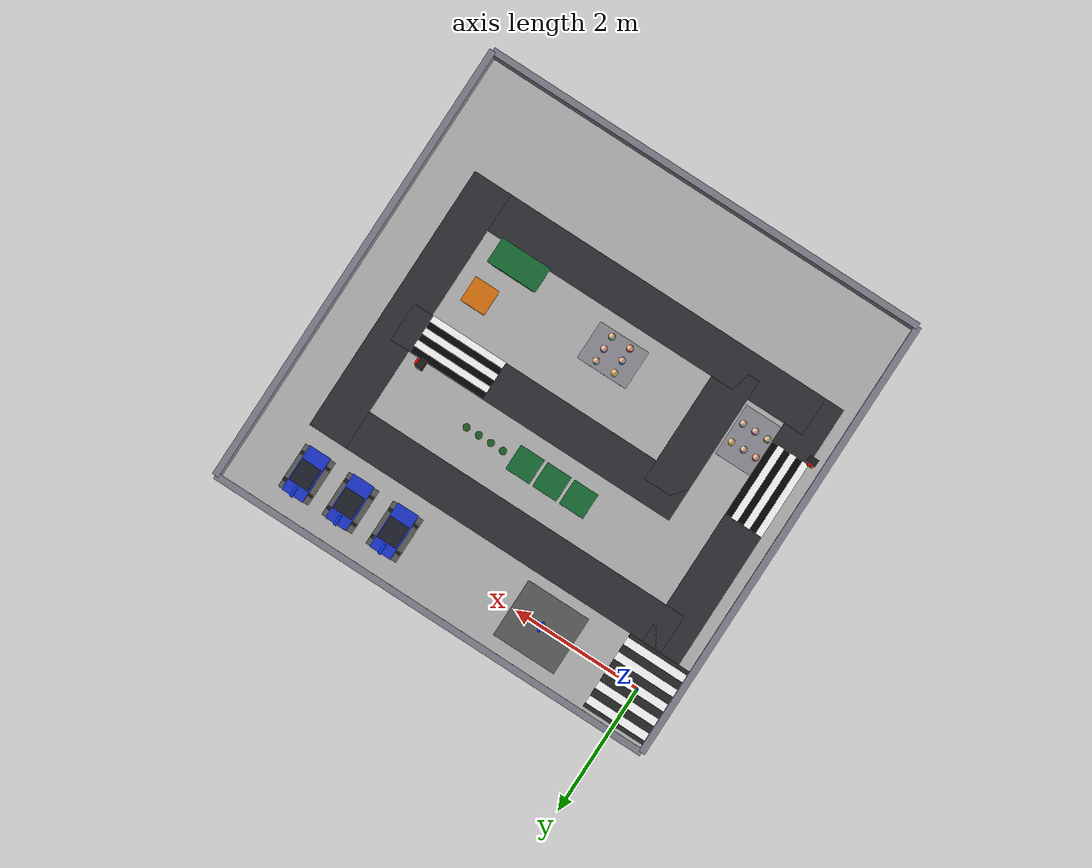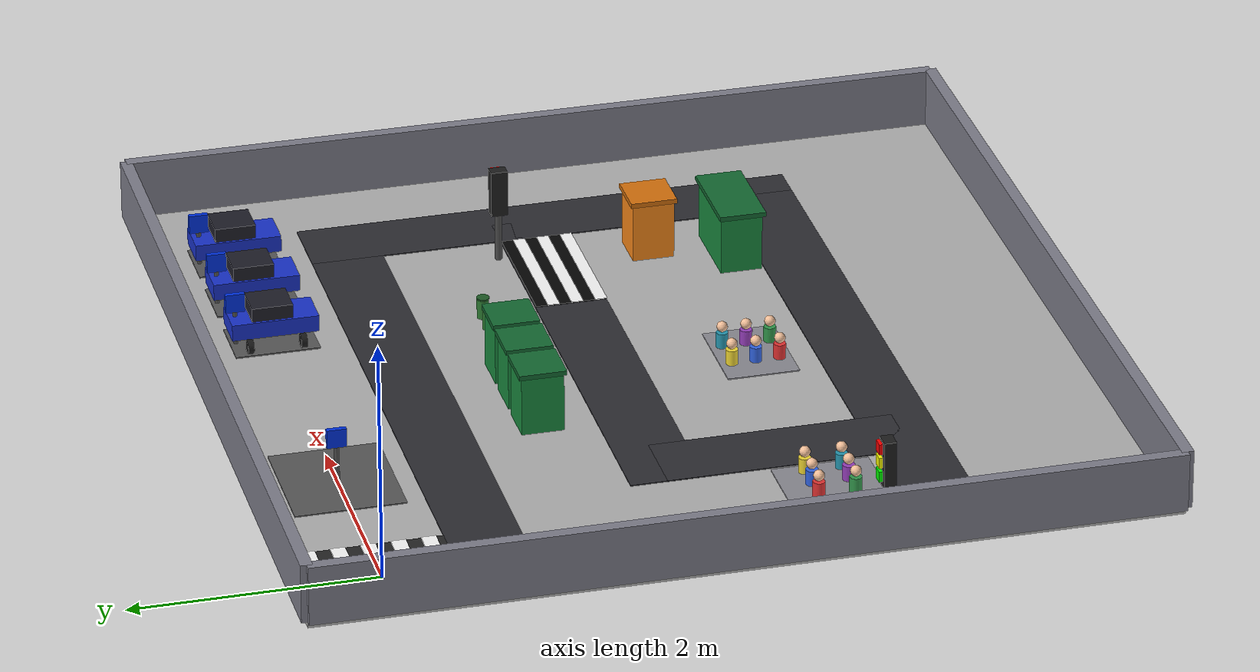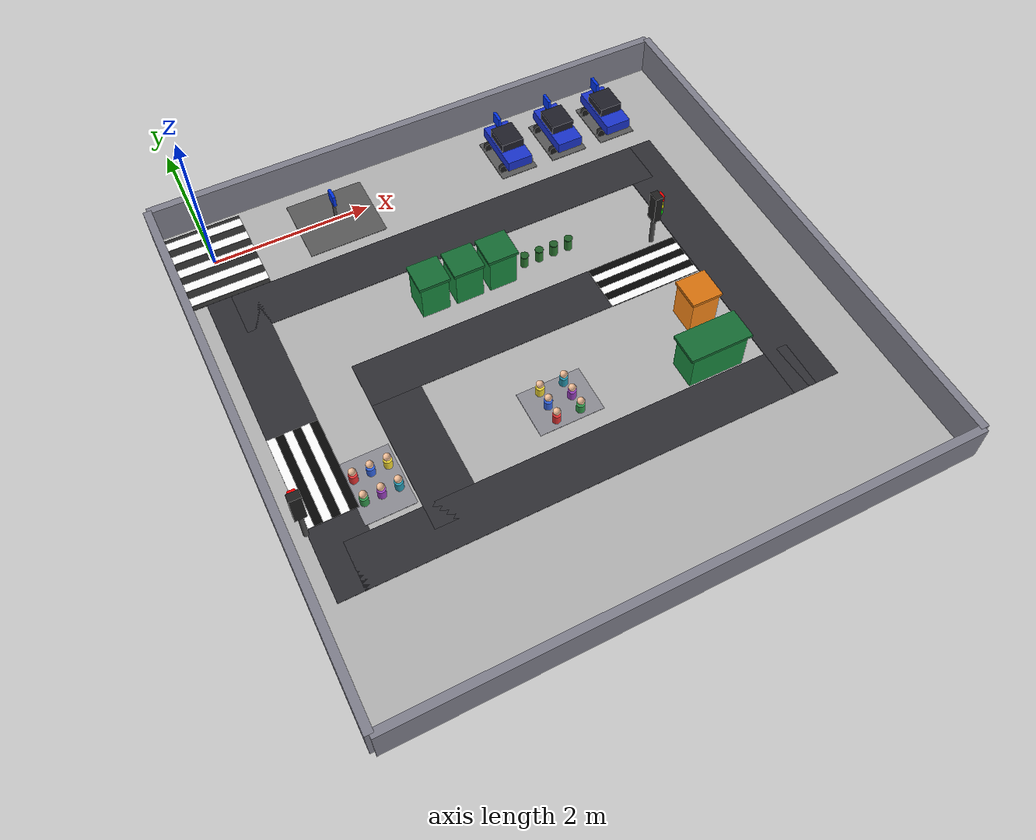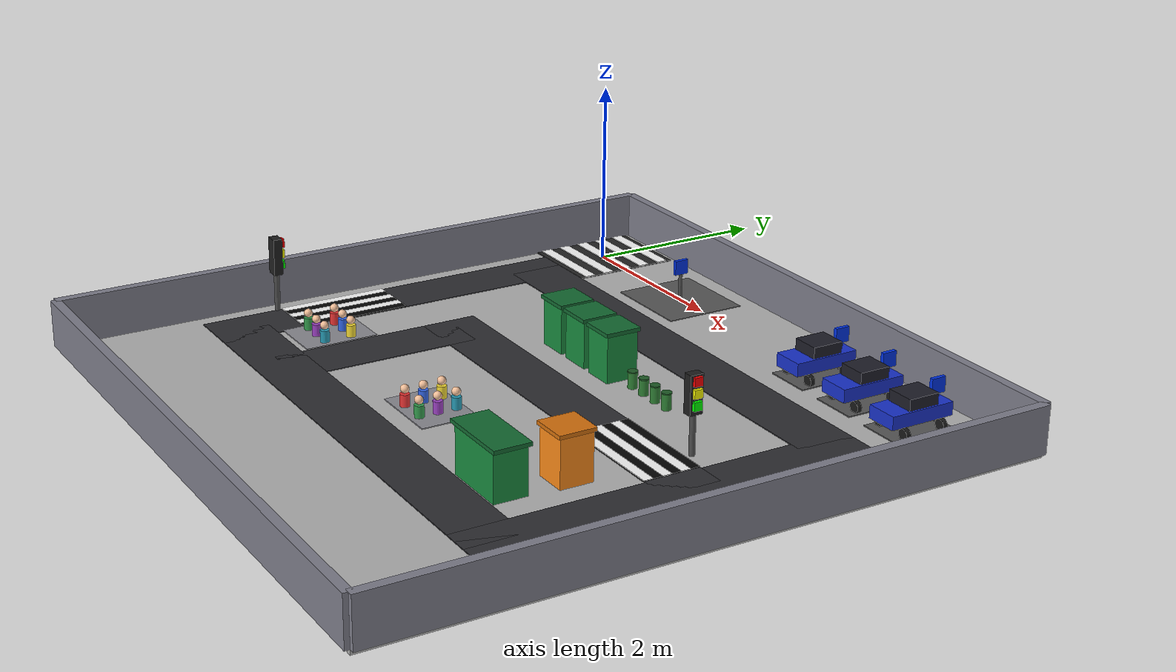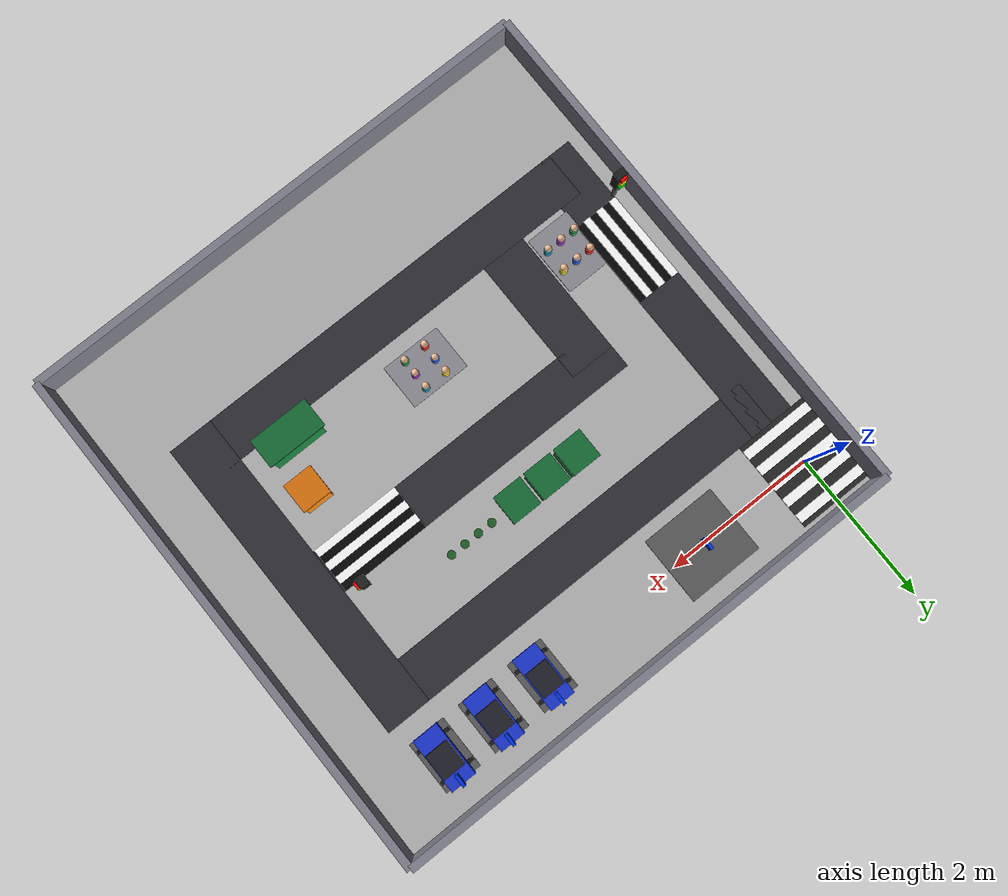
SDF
<sdf version="1.7">
 <world name="robot_nav_field">
  <physics type="ode">
   <max_step_size>0.001</max_step_size>
   <real_time_factor>1</real_time_factor>
   <real_time_update_rate>1000</real_time_update_rate>
  </physics>
  <scene><ambient>0.45 0.45 0.45 1</ambient><background>0.7 0.7 0.7 1</background><shadows>1</shadows></scene>
  <light name="sun" type="directional">
   <pose>0 0 10 0 -0 0</pose>
   <diffuse>0.8 0.8 0.8 1</diffuse>
   <specular>0.1 0.1 0.1 1</specular>
   <direction>0.3 0.3 -1</direction>
   <attenuation><range>10</range></attenuation>
   <spot><inner_angle>0</inner_angle><outer_angle>0</outer_angle><falloff>0</falloff></spot>
  </light>
  <model name="ground_plane">
   <static>1</static>
   <pose>2.975 -2.8 -0.025 0 -0 0</pose>
   <link name="ground_link">
    <visual name="ground_visual">
     <geometry><box><size>7 7 0.05</size></box></geometry>
     <material><ambient>0.7 0.7 0.7 1</ambient><diffuse>0.7 0.7 0.7 1</diffuse></material>
    </visual>
    <collision name="ground_collision"><geometry><box><size>7 7 0.05</size></box></geometry></collision>
   </link>
  </model>
  <model name="boundary_walls">
   <static>1</static>
   <link name="north_wall">
    <pose>-0.525 -2.8 0.25 0 -0 0</pose>
    <visual name="north_visual">
     <geometry><box><size>0.1 7 0.5</size></box></geometry>
     <material><ambient>0.5 0.5 0.55 1</ambient><diffuse>0.5 0.5 0.55 1</diffuse></material>
    </visual>
    <collision name="north_collision"><geometry><box><size>0.1 7 0.5</size></box></geometry></collision>
   </link>
   <link name="south_wall">
    <pose>6.475 -2.8 0.25 0 -0 0</pose>
    <visual name="south_visual">
     <geometry><box><size>0.1 7 0.5</size></box></geometry>
     <material><ambient>0.5 0.5 0.55 1</ambient><diffuse>0.5 0.5 0.55 1</diffuse></material>
    </visual>
    <collision name="south_collision"><geometry><box><size>0.1 7 0.5</size></box></geometry></collision>
   </link>
   <link name="west_wall">
    <pose>2.975 -6.3 0.25 0 -0 0</pose>
    <visual name="west_visual">
     <geometry><box><size>7 0.1 0.5</size></box></geometry>
     <material><ambient>0.5 0.5 0.55 1</ambient><diffuse>0.5 0.5 0.55 1</diffuse></material>
    </visual>
    <collision name="west_collision"><geometry><box><size>7 0.1 0.5</size></box></geometry></collision>
   </link>
   <link name="east_wall">
    <pose>2.975 0.7 0.25 0 -0 0</pose>
    <visual name="east_visual">
     <geometry><box><size>7 0.1 0.5</size></box></geometry>
     <material><ambient>0.5 0.5 0.55 1</ambient><diffuse>0.5 0.5 0.55 1</diffuse></material>
    </visual>
    <collision name="east_collision"><geometry><box><size>7 0.1 0.5</size></box></geometry></collision>
   </link>
  </model>
  <model name="roads">
   <static>1</static>
   <link name="road_top">
    <pose>0 -2.7 0.005 0 -0 0</pose>
    <visual name="road_top_visual">
     <geometry><box><size>0.6 4.2 0.01</size></box></geometry>
     <material><ambient>0.18 0.18 0.2 1</ambient><diffuse>0.18 0.18 0.2 1</diffuse></material>
    </visual>
    <collision name="road_top_collision"><geometry><box><size>0.6 3.6 0.01</size></box></geometry></collision>
   </link>
   <link name="road_right">
    <pose>2.75 -0.9 0.005 0 -0 0</pose>
    <visual name="road_right_visual">
     <geometry><box><size>5.5 0.6 0.01</size></box></geometry>
     <material><ambient>0.18 0.18 0.2 1</ambient><diffuse>0.18 0.18 0.2 1</diffuse></material>
    </visual>
    <collision name="road_right_collision"><geometry><box><size>5.5 0.6 0.01</size></box></geometry></collision>
   </link>
   <link name="road_bottom_left">
    <pose>5.5 -2.7 0.005 0 -0 0</pose>
    <visual name="road_bl_visual">
     <geometry><box><size>0.6 4.2 0.01</size></box></geometry>
     <material><ambient>0.18 0.18 0.2 1</ambient><diffuse>0.18 0.18 0.2 1</diffuse></material>
    </visual>
    <collision name="road_bl_collision"><geometry><box><size>0.6 3.6 0.01</size></box></geometry></collision>
   </link>
   <link name="road_left">
    <pose>2.75 -4.5 0.005 0 -0 0</pose>
    <visual name="road_left_visual">
     <geometry><box><size>5.5 0.6 0.01</size></box></geometry>
     <material><ambient>0.18 0.18 0.2 1</ambient><diffuse>0.18 0.18 0.2 1</diffuse></material>
    </visual>
    <collision name="road_left_collision"><geometry><box><size>5.5 0.6 0.01</size></box></geometry></collision>
   </link>
   <link name="road_vertical">
    <pose>3.2 -2.5 0.005 0 -0 0</pose>
    <visual name="road_vertical_visual">
     <geometry><box><size>4.6 0.6 0.01</size></box></geometry>
     <material><ambient>0.18 0.18 0.2 1</ambient><diffuse>0.18 0.18 0.2 1</diffuse></material>
    </visual>
    <collision name="road_vertical_collision">
     <geometry><box><size>3.4 0.6 0.01</size></box></geometry>
    </collision>
   </link>
   <link name="road_horizontal">
    <pose>1.2 -3.5 0.005 0 -0 0</pose>
    <visual name="road_horizontal_visual">
     <geometry><box><size>0.6 2 0.01</size></box></geometry>
     <material><ambient>0.18 0.18 0.2 1</ambient><diffuse>0.18 0.18 0.2 1</diffuse></material>
    </visual>
    <collision name="road_horizontal_collision">
     <geometry><box><size>0.6 2 0.01</size></box></geometry>
    </collision>
   </link>
  </model>
  <model name="start_finish">
   <static>1</static>
   <link name="zebra_link">
    <visual name="zebra_base">
     <pose>0 0 0.006 0 -0 0</pose>
     <geometry><box><size>1 1.2 0.012</size></box></geometry>
     <material><ambient>0.15 0.15 0.15 1</ambient><diffuse>0.15 0.15 0.15 1</diffuse></material>
    </visual>
    <collision name="zebra_base_col">
     <pose>0 0 0.006 0 -0 0</pose>
     <geometry><box><size>1 1.2 0.012</size></box></geometry>
    </collision>
    <visual name="stripe_1">
     <pose>0 -0.48 0.013 0 -0 0</pose>
     <geometry><box><size>1 0.12 0.014</size></box></geometry>
     <material><ambient>1 1 1 1</ambient><diffuse>1 1 1 1</diffuse></material>
    </visual>
    <visual name="stripe_2">
     <pose>0 -0.24 0.013 0 -0 0</pose>
     <geometry><box><size>1 0.12 0.014</size></box></geometry>
     <material><ambient>1 1 1 1</ambient><diffuse>1 1 1 1</diffuse></material>
    </visual>
    <visual name="stripe_3">
     <pose>0 0 0.013 0 -0 0</pose>
     <geometry><box><size>1 0.12 0.014</size></box></geometry>
     <material><ambient>1 1 1 1</ambient><diffuse>1 1 1 1</diffuse></material>
    </visual>
    <visual name="stripe_4">
     <pose>0 0.24 0.013 0 -0 0</pose>
     <geometry><box><size>1 0.12 0.014</size></box></geometry>
     <material><ambient>1 1 1 1</ambient><diffuse>1 1 1 1</diffuse></material>
    </visual>
    <visual name="stripe_5">
     <pose>0 0.48 0.013 0 -0 0</pose>
     <geometry><box><size>1 0.12 0.014</size></box></geometry>
     <material><ambient>1 1 1 1</ambient><diffuse>1 1 1 1</diffuse></material>
    </visual>
   </link>
  </model>
  <model name="zebra_top">
   <static>1</static>
   <pose>0 -3.3 0 0 -0 0</pose>
   <link name="zebra_top_link">
    <visual name="base">
     <pose>0 0 0.006 0 -0 0</pose>
     <geometry><box><size>0.6 1.2 0.012</size></box></geometry>
     <material><ambient>0.2 0.2 0.2 1</ambient><diffuse>0.2 0.2 0.2 1</diffuse></material>
    </visual>
    <collision name="base_col">
     <pose>0 0 0.006 0 -0 0</pose>
     <geometry><box><size>0.6 1.2 0.012</size></box></geometry>
    </collision>
    <visual name="w1">
     <pose>-0.25 0 0.013 0 -0 0</pose>
     <geometry><box><size>0.1 1.2 0.014</size></box></geometry>
     <material><ambient>1 1 1 1</ambient><diffuse>1 1 1 1</diffuse></material>
    </visual>
    <visual name="k1">
     <pose>-0.15 0 0.013 0 -0 0</pose>
     <geometry><box><size>0.1 1.2 0.014</size></box></geometry>
     <material><ambient>0.02 0.02 0.02 1</ambient><diffuse>0.02 0.02 0.02 1</diffuse></material>
    </visual>
    <visual name="w2">
     <pose>-0.05 0 0.013 0 -0 0</pose>
     <geometry><box><size>0.1 1.2 0.014</size></box></geometry>
     <material><ambient>1 1 1 1</ambient><diffuse>1 1 1 1</diffuse></material>
    </visual>
    <visual name="k2">
     <pose>0.05 0 0.013 0 -0 0</pose>
     <geometry><box><size>0.1 1.2 0.014</size></box></geometry>
     <material><ambient>0.02 0.02 0.02 1</ambient><diffuse>0.02 0.02 0.02 1</diffuse></material>
    </visual>
    <visual name="w3">
     <pose>0.15 0 0.013 0 -0 0</pose>
     <geometry><box><size>0.1 1.2 0.014</size></box></geometry>
     <material><ambient>1 1 1 1</ambient><diffuse>1 1 1 1</diffuse></material>
    </visual>
    <visual name="k3">
     <pose>0.25 0 0.013 0 -0 0</pose>
     <geometry><box><size>0.1 1.2 0.014</size></box></geometry>
     <material><ambient>0.02 0.02 0.02 1</ambient><diffuse>0.02 0.02 0.02 1</diffuse></material>
    </visual>
   </link>
  </model>
  <model name="traffic_light_top">
   <pose>-3.59885 -3.37809 0 -0.000183 0.00942 1.5514</pose>
   <static>1</static>
   <link name="tl_top_link">
    <visual name="pole_visual">
     <pose>-0.5 -3.3 0.3 0 -0 0</pose>
     <geometry><cylinder><radius>0.03</radius><length>0.6</length></cylinder></geometry>
     <material><ambient>0.3 0.3 0.3 1</ambient><diffuse>0.3 0.3 0.3 1</diffuse></material>
    </visual>
    <collision name="pole_col">
     <pose>-0.5 -3.3 0.3 0 -0 0</pose>
     <geometry><cylinder><radius>0.03</radius><length>0.6</length></cylinder></geometry>
    </collision>
    <visual name="housing_visual">
     <pose>-0.5 -3.3 0.62 0 -0 0</pose>
     <geometry><box><size>0.1 0.14 0.4</size></box></geometry>
     <material><ambient>0.12 0.12 0.12 1</ambient><diffuse>0.12 0.12 0.12 1</diffuse></material>
    </visual>
    <collision name="housing_col">
     <pose>-0.5 -3.3 0.62 0 -0 0</pose>
     <geometry><box><size>0.1 0.14 0.4</size></box></geometry>
    </collision>
    <visual name="red_visual">
     <pose>-0.43 -3.3 0.76 0 -0 0</pose>
     <geometry><box><size>0.03 0.09 0.09</size></box></geometry>
     <material><ambient>1 0 0 1</ambient><diffuse>1 0 0 1</diffuse></material>
    </visual>
    <visual name="yellow_visual">
     <pose>-0.43 -3.3 0.64 0 -0 0</pose>
     <geometry><box><size>0.03 0.09 0.09</size></box></geometry>
     <material><ambient>1 1 0 1</ambient><diffuse>1 1 0 1</diffuse></material>
    </visual>
    <visual name="green_visual">
     <pose>-0.43 -3.3 0.52 0 -0 0</pose>
     <geometry><box><size>0.03 0.09 0.09</size></box></geometry>
     <material><ambient>0 1 0 1</ambient><diffuse>0 1 0 1</diffuse></material>
    </visual>
   </link>
  </model>
  <model name="block_a">
   <static>1</static>
   <pose>0.571732 -3.73098 0 0 0 -1.5682</pose>
   <link name="block_a_link">
    <visual name="sidewalk">
     <pose>0 0 0.005 0 -0 0</pose>
     <geometry><box><size>0.8 0.6 0.01</size></box></geometry>
     <material><ambient>0.55 0.55 0.58 1</ambient><diffuse>0.55 0.55 0.58 1</diffuse></material>
    </visual>
    <collision name="sidewalk_col">
     <pose>0 0 0.005 0 -0 0</pose>
     <geometry><box><size>0.8 0.6 0.01</size></box></geometry>
    </collision>
    <visual name="p1_body">
     <pose>-0.15 -0.2 0.07 0 -0 0</pose>
     <geometry><cylinder><radius>0.05</radius><length>0.14</length></cylinder></geometry>
     <material><ambient>0.9 0.2 0.2 1</ambient><diffuse>0.9 0.2 0.2 1</diffuse></material>
    </visual>
    <visual name="p1_head">
     <pose>-0.15 -0.2 0.19 0 -0 0</pose>
     <geometry><sphere><radius>0.045</radius></sphere></geometry>
     <material><ambient>0.95 0.75 0.6 1</ambient><diffuse>0.95 0.75 0.6 1</diffuse></material>
    </visual>
    <visual name="p2_body">
     <pose>-0.15 0 0.07 0 -0 0</pose>
     <geometry><cylinder><radius>0.05</radius><length>0.14</length></cylinder></geometry>
     <material><ambient>0.2 0.4 0.9 1</ambient><diffuse>0.2 0.4 0.9 1</diffuse></material>
    </visual>
    <visual name="p2_head">
     <pose>-0.15 0 0.19 0 -0 0</pose>
     <geometry><sphere><radius>0.045</radius></sphere></geometry>
     <material><ambient>0.95 0.75 0.6 1</ambient><diffuse>0.95 0.75 0.6 1</diffuse></material>
    </visual>
    <visual name="p3_body">
     <pose>-0.15 0.2 0.07 0 -0 0</pose>
     <geometry><cylinder><radius>0.05</radius><length>0.14</length></cylinder></geometry>
     <material><ambient>0.95 0.85 0.2 1</ambient><diffuse>0.95 0.85 0.2 1</diffuse></material>
    </visual>
    <visual name="p3_head">
     <pose>-0.15 0.2 0.19 0 -0 0</pose>
     <geometry><sphere><radius>0.045</radius></sphere></geometry>
     <material><ambient>0.95 0.75 0.6 1</ambient><diffuse>0.95 0.75 0.6 1</diffuse></material>
    </visual>
    <visual name="p4_body">
     <pose>0.15 -0.2 0.07 0 -0 0</pose>
     <geometry><cylinder><radius>0.05</radius><length>0.14</length></cylinder></geometry>
     <material><ambient>0.2 0.6 0.3 1</ambient><diffuse>0.2 0.6 0.3 1</diffuse></material>
    </visual>
    <visual name="p4_head">
     <pose>0.15 -0.2 0.19 0 -0 0</pose>
     <geometry><sphere><radius>0.045</radius></sphere></geometry>
     <material><ambient>0.95 0.75 0.6 1</ambient><diffuse>0.95 0.75 0.6 1</diffuse></material>
    </visual>
    <visual name="p5_body">
     <pose>0.15 0 0.07 0 -0 0</pose>
     <geometry><cylinder><radius>0.05</radius><length>0.14</length></cylinder></geometry>
     <material><ambient>0.6 0.25 0.75 1</ambient><diffuse>0.6 0.25 0.75 1</diffuse></material>
    </visual>
    <visual name="p5_head">
     <pose>0.15 0 0.19 0 -0 0</pose>
     <geometry><sphere><radius>0.045</radius></sphere></geometry>
     <material><ambient>0.95 0.75 0.6 1</ambient><diffuse>0.95 0.75 0.6 1</diffuse></material>
    </visual>
    <visual name="p6_body">
     <pose>0.15 0.2 0.07 0 -0 0</pose>
     <geometry><cylinder><radius>0.05</radius><length>0.14</length></cylinder></geometry>
     <material><ambient>0.15 0.6 0.7 1</ambient><diffuse>0.15 0.6 0.7 1</diffuse></material>
    </visual>
    <visual name="p6_head">
     <pose>0.15 0.2 0.19 0 -0 0</pose>
     <geometry><sphere><radius>0.045</radius></sphere></geometry>
     <material><ambient>0.95 0.75 0.6 1</ambient><diffuse>0.95 0.75 0.6 1</diffuse></material>
    </visual>
   </link>
  </model>
  <model name="block_b">
   <static>1</static>
   <pose>2.8 -3.7 0 0 -0 0</pose>
   <link name="block_b_link">
    <visual name="sidewalk">
     <pose>0 0 0.005 0 -0 0</pose>
     <geometry><box><size>0.8 0.6 0.01</size></box></geometry>
     <material><ambient>0.55 0.55 0.58 1</ambient><diffuse>0.55 0.55 0.58 1</diffuse></material>
    </visual>
    <collision name="sidewalk_col">
     <pose>0 0 0.005 0 -0 0</pose>
     <geometry><box><size>0.8 0.6 0.01</size></box></geometry>
    </collision>
    <visual name="p1_body">
     <pose>-0.15 -0.2 0.07 0 -0 0</pose>
     <geometry><cylinder><radius>0.05</radius><length>0.14</length></cylinder></geometry>
     <material><ambient>0.9 0.2 0.2 1</ambient><diffuse>0.9 0.2 0.2 1</diffuse></material>
    </visual>
    <visual name="p1_head">
     <pose>-0.15 -0.2 0.19 0 -0 0</pose>
     <geometry><sphere><radius>0.045</radius></sphere></geometry>
     <material><ambient>0.95 0.75 0.6 1</ambient><diffuse>0.95 0.75 0.6 1</diffuse></material>
    </visual>
    <visual name="p2_body">
     <pose>-0.15 0 0.07 0 -0 0</pose>
     <geometry><cylinder><radius>0.05</radius><length>0.14</length></cylinder></geometry>
     <material><ambient>0.2 0.4 0.9 1</ambient><diffuse>0.2 0.4 0.9 1</diffuse></material>
    </visual>
    <visual name="p2_head">
     <pose>-0.15 0 0.19 0 -0 0</pose>
     <geometry><sphere><radius>0.045</radius></sphere></geometry>
     <material><ambient>0.95 0.75 0.6 1</ambient><diffuse>0.95 0.75 0.6 1</diffuse></material>
    </visual>
    <visual name="p3_body">
     <pose>-0.15 0.2 0.07 0 -0 0</pose>
     <geometry><cylinder><radius>0.05</radius><length>0.14</length></cylinder></geometry>
     <material><ambient>0.95 0.85 0.2 1</ambient><diffuse>0.95 0.85 0.2 1</diffuse></material>
    </visual>
    <visual name="p3_head">
     <pose>-0.15 0.2 0.19 0 -0 0</pose>
     <geometry><sphere><radius>0.045</radius></sphere></geometry>
     <material><ambient>0.95 0.75 0.6 1</ambient><diffuse>0.95 0.75 0.6 1</diffuse></material>
    </visual>
    <visual name="p4_body">
     <pose>0.15 -0.2 0.07 0 -0 0</pose>
     <geometry><cylinder><radius>0.05</radius><length>0.14</length></cylinder></geometry>
     <material><ambient>0.2 0.6 0.3 1</ambient><diffuse>0.2 0.6 0.3 1</diffuse></material>
    </visual>
    <visual name="p4_head">
     <pose>0.15 -0.2 0.19 0 -0 0</pose>
     <geometry><sphere><radius>0.045</radius></sphere></geometry>
     <material><ambient>0.95 0.75 0.6 1</ambient><diffuse>0.95 0.75 0.6 1</diffuse></material>
    </visual>
    <visual name="p5_body">
     <pose>0.15 0 0.07 0 -0 0</pose>
     <geometry><cylinder><radius>0.05</radius><length>0.14</length></cylinder></geometry>
     <material><ambient>0.6 0.25 0.75 1</ambient><diffuse>0.6 0.25 0.75 1</diffuse></material>
    </visual>
    <visual name="p5_head">
     <pose>0.15 0 0.19 0 -0 0</pose>
     <geometry><sphere><radius>0.045</radius></sphere></geometry>
     <material><ambient>0.95 0.75 0.6 1</ambient><diffuse>0.95 0.75 0.6 1</diffuse></material>
    </visual>
    <visual name="p6_body">
     <pose>0.15 0.2 0.07 0 -0 0</pose>
     <geometry><cylinder><radius>0.05</radius><length>0.14</length></cylinder></geometry>
     <material><ambient>0.15 0.6 0.7 1</ambient><diffuse>0.15 0.6 0.7 1</diffuse></material>
    </visual>
    <visual name="p6_head">
     <pose>0.15 0.2 0.19 0 -0 0</pose>
     <geometry><sphere><radius>0.045</radius></sphere></geometry>
     <material><ambient>0.95 0.75 0.6 1</ambient><diffuse>0.95 0.75 0.6 1</diffuse></material>
    </visual>
   </link>
  </model>
  <model name="building_a">
   <static>1</static>
   <pose>2.1 -1.75 0 0 -0 0</pose>
   <link name="building_a_link">
    <visual name="body">
     <pose>0 0 0.25 0 -0 0</pose>
     <geometry><box><size>0.35 0.35 0.5</size></box></geometry>
     <material><ambient>0.1 0.55 0.25 1</ambient><diffuse>0.1 0.55 0.25 1</diffuse></material>
    </visual>
    <collision name="body_col">
     <pose>0 0 0.25 0 -0 0</pose>
     <geometry><box><size>0.35 0.35 0.5</size></box></geometry>
    </collision>
    <visual name="roof">
     <pose>0 0 0.52 0 -0 0</pose>
     <geometry><box><size>0.39 0.39 0.04</size></box></geometry>
     <material><ambient>0.08 0.42 0.2 1</ambient><diffuse>0.08 0.42 0.2 1</diffuse></material>
    </visual>
   </link>
  </model>
  <model name="building_b">
   <static>1</static>
   <pose>2.54 -1.75 0 0 -0 0</pose>
   <link name="building_b_link">
    <visual name="body">
     <pose>0 0 0.25 0 -0 0</pose>
     <geometry><box><size>0.35 0.35 0.5</size></box></geometry>
     <material><ambient>0.1 0.55 0.25 1</ambient><diffuse>0.1 0.55 0.25 1</diffuse></material>
    </visual>
    <collision name="body_col">
     <pose>0 0 0.25 0 -0 0</pose>
     <geometry><box><size>0.35 0.35 0.5</size></box></geometry>
    </collision>
    <visual name="roof">
     <pose>0 0 0.52 0 -0 0</pose>
     <geometry><box><size>0.39 0.39 0.04</size></box></geometry>
     <material><ambient>0.08 0.42 0.2 1</ambient><diffuse>0.08 0.42 0.2 1</diffuse></material>
    </visual>
   </link>
  </model>
  <model name="building_c">
   <static>1</static>
   <pose>2.98 -1.75 0 0 -0 0</pose>
   <link name="building_c_link">
    <visual name="body">
     <pose>0 0 0.25 0 -0 0</pose>
     <geometry><box><size>0.35 0.35 0.5</size></box></geometry>
     <material><ambient>0.1 0.55 0.25 1</ambient><diffuse>0.1 0.55 0.25 1</diffuse></material>
    </visual>
    <collision name="body_col">
     <pose>0 0 0.25 0 -0 0</pose>
     <geometry><box><size>0.35 0.35 0.5</size></box></geometry>
    </collision>
    <visual name="roof">
     <pose>0 0 0.52 0 -0 0</pose>
     <geometry><box><size>0.39 0.39 0.04</size></box></geometry>
     <material><ambient>0.08 0.42 0.2 1</ambient><diffuse>0.08 0.42 0.2 1</diffuse></material>
    </visual>
   </link>
  </model>
  <model name="ev_parking_zone">
   <static>1</static>
   <pose>1.58 0 0 0 -0 0</pose>
   <link name="ev_parking_link">
    <visual name="pad">
     <pose>0 0 0.005 0 -0 0</pose>
     <geometry><box><size>1 0.9 0.01</size></box></geometry>
     <material><ambient>0.35 0.35 0.35 1</ambient><diffuse>0.35 0.35 0.35 1</diffuse></material>
    </visual>
    <collision name="pad_col">
     <pose>0 0 0.005 0 -0 0</pose>
     <geometry><box><size>1 0.9 0.01</size></box></geometry>
    </collision>
    <visual name="p_pole">
     <pose>0 0 0.175 0 -0 0</pose>
     <geometry><cylinder><radius>0.02</radius><length>0.35</length></cylinder></geometry>
     <material><ambient>0.3 0.3 0.3 1</ambient><diffuse>0.3 0.3 0.3 1</diffuse></material>
    </visual>
    <collision name="p_pole_col">
     <pose>0 0 0.175 0 -0 0</pose>
     <geometry><cylinder><radius>0.02</radius><length>0.35</length></cylinder></geometry>
    </collision>
    <visual name="p_sign">
     <pose>0 0 0.38 0 -0 0</pose>
     <geometry><box><size>0.04 0.16 0.16</size></box></geometry>
     <material><ambient>0 0.2 0.9 1</ambient><diffuse>0 0.2 0.9 1</diffuse></material>
    </visual>
   </link>
  </model>
  <model name="parking_slots">
   <static>1</static>
   <link name="slot_3">
    <pose>4 0 0.006 0 -0 0</pose>
    <visual name="slot3_visual">
     <geometry><box><size>0.5 0.7 0.012</size></box></geometry>
     <material><ambient>0.35 0.35 0.35 1</ambient><diffuse>0.35 0.35 0.35 1</diffuse></material>
    </visual>
    <collision name="slot3_col"><geometry><box><size>0.5 0.7 0.012</size></box></geometry></collision>
   </link>
   <link name="slot_2">
    <pose>4.73 0 0.006 0 -0 0</pose>
    <visual name="slot2_visual">
     <geometry><box><size>0.5 0.7 0.012</size></box></geometry>
     <material><ambient>0.35 0.35 0.35 1</ambient><diffuse>0.35 0.35 0.35 1</diffuse></material>
    </visual>
    <collision name="slot2_col"><geometry><box><size>0.5 0.7 0.012</size></box></geometry></collision>
   </link>
   <link name="slot_1">
    <pose>5.45 0 0.006 0 -0 0</pose>
    <visual name="slot1_visual">
     <geometry><box><size>0.5 0.7 0.012</size></box></geometry>
     <material><ambient>0.35 0.35 0.35 1</ambient><diffuse>0.35 0.35 0.35 1</diffuse></material>
    </visual>
    <collision name="slot1_col"><geometry><box><size>0.5 0.7 0.012</size></box></geometry></collision>
   </link>
  </model>
  <model name="car_slot_3">
   <static>1</static>
   <pose>4 0 0 0 -0 1.5708</pose>
   <link name="car_slot_3_link">
    <visual name="body">
     <pose>0 0 0.19 0 -0 0</pose>
     <geometry><box><size>0.72 0.34 0.14</size></box></geometry>
     <material><ambient>0.1 0.2 0.8 1</ambient><diffuse>0.1 0.2 0.8 1</diffuse></material>
    </visual>
    <collision name="body_col">
     <pose>0 0 0.19 0 -0 0</pose>
     <geometry><box><size>0.72 0.34 0.14</size></box></geometry>
    </collision>
    <visual name="cabin">
     <pose>0.02 0 0.32 0 -0 0</pose>
     <geometry><box><size>0.34 0.3 0.12</size></box></geometry>
     <material><ambient>0.12 0.12 0.16 1</ambient><diffuse>0.12 0.12 0.16 1</diffuse></material>
    </visual>
    <visual name="w1">
     <pose>0.22 0.18 0.06 3.14159 1.57079 3.14159</pose>
     <geometry><cylinder><radius>0.06</radius><length>0.05</length></cylinder></geometry>
     <material><ambient>0.1 0.1 0.1 1</ambient><diffuse>0.1 0.1 0.1 1</diffuse></material>
    </visual>
    <visual name="w2">
     <pose>0.22 -0.18 0.06 3.14159 1.57079 3.14159</pose>
     <geometry><cylinder><radius>0.06</radius><length>0.05</length></cylinder></geometry>
     <material><ambient>0.1 0.1 0.1 1</ambient><diffuse>0.1 0.1 0.1 1</diffuse></material>
    </visual>
    <visual name="w3">
     <pose>-0.22 0.18 0.06 3.14159 1.57079 3.14159</pose>
     <geometry><cylinder><radius>0.06</radius><length>0.05</length></cylinder></geometry>
     <material><ambient>0.1 0.1 0.1 1</ambient><diffuse>0.1 0.1 0.1 1</diffuse></material>
    </visual>
    <visual name="w4">
     <pose>-0.22 -0.18 0.06 3.14159 1.57079 3.14159</pose>
     <geometry><cylinder><radius>0.06</radius><length>0.05</length></cylinder></geometry>
     <material><ambient>0.1 0.1 0.1 1</ambient><diffuse>0.1 0.1 0.1 1</diffuse></material>
    </visual>
   </link>
  </model>
  <model name="car_slot_2">
   <static>1</static>
   <pose>4.73 0 0 0 -0 1.5708</pose>
   <link name="car_slot_2_link">
    <visual name="body">
     <pose>0 0 0.19 0 -0 0</pose>
     <geometry><box><size>0.72 0.34 0.14</size></box></geometry>
     <material><ambient>0.1 0.2 0.8 1</ambient><diffuse>0.1 0.2 0.8 1</diffuse></material>
    </visual>
    <collision name="body_col">
     <pose>0 0 0.19 0 -0 0</pose>
     <geometry><box><size>0.72 0.34 0.14</size></box></geometry>
    </collision>
    <visual name="cabin">
     <pose>0.02 0 0.32 0 -0 0</pose>
     <geometry><box><size>0.34 0.3 0.12</size></box></geometry>
     <material><ambient>0.12 0.12 0.16 1</ambient><diffuse>0.12 0.12 0.16 1</diffuse></material>
    </visual>
    <visual name="w1">
     <pose>0.22 0.18 0.06 3.14159 1.57079 3.14159</pose>
     <geometry><cylinder><radius>0.06</radius><length>0.05</length></cylinder></geometry>
     <material><ambient>0.1 0.1 0.1 1</ambient><diffuse>0.1 0.1 0.1 1</diffuse></material>
    </visual>
    <visual name="w2">
     <pose>0.22 -0.18 0.06 3.14159 1.57079 3.14159</pose>
     <geometry><cylinder><radius>0.06</radius><length>0.05</length></cylinder></geometry>
     <material><ambient>0.1 0.1 0.1 1</ambient><diffuse>0.1 0.1 0.1 1</diffuse></material>
    </visual>
    <visual name="w3">
     <pose>-0.22 0.18 0.06 3.14159 1.57079 3.14159</pose>
     <geometry><cylinder><radius>0.06</radius><length>0.05</length></cylinder></geometry>
     <material><ambient>0.1 0.1 0.1 1</ambient><diffuse>0.1 0.1 0.1 1</diffuse></material>
    </visual>
    <visual name="w4">
     <pose>-0.22 -0.18 0.06 3.14159 1.57079 3.14159</pose>
     <geometry><cylinder><radius>0.06</radius><length>0.05</length></cylinder></geometry>
     <material><ambient>0.1 0.1 0.1 1</ambient><diffuse>0.1 0.1 0.1 1</diffuse></material>
    </visual>
   </link>
  </model>
  <model name="car_slot_1">
   <static>1</static>
   <pose>5.45 0 0 0 -0 1.5708</pose>
   <link name="car_slot_1_link">
    <visual name="body">
     <pose>0 0 0.19 0 -0 0</pose>
     <geometry><box><size>0.72 0.34 0.14</size></box></geometry>
     <material><ambient>0.1 0.2 0.8 1</ambient><diffuse>0.1 0.2 0.8 1</diffuse></material>
    </visual>
    <collision name="body_col">
     <pose>0 0 0.19 0 -0 0</pose>
     <geometry><box><size>0.72 0.34 0.14</size></box></geometry>
    </collision>
    <visual name="cabin">
     <pose>0.02 0 0.32 0 -0 0</pose>
     <geometry><box><size>0.34 0.3 0.12</size></box></geometry>
     <material><ambient>0.12 0.12 0.16 1</ambient><diffuse>0.12 0.12 0.16 1</diffuse></material>
    </visual>
    <visual name="w1">
     <pose>0.22 0.18 0.06 3.14159 1.57079 3.14159</pose>
     <geometry><cylinder><radius>0.06</radius><length>0.05</length></cylinder></geometry>
     <material><ambient>0.1 0.1 0.1 1</ambient><diffuse>0.1 0.1 0.1 1</diffuse></material>
    </visual>
    <visual name="w2">
     <pose>0.22 -0.18 0.06 3.14159 1.57079 3.14159</pose>
     <geometry><cylinder><radius>0.06</radius><length>0.05</length></cylinder></geometry>
     <material><ambient>0.1 0.1 0.1 1</ambient><diffuse>0.1 0.1 0.1 1</diffuse></material>
    </visual>
    <visual name="w3">
     <pose>-0.22 0.18 0.06 3.14159 1.57079 3.14159</pose>
     <geometry><cylinder><radius>0.06</radius><length>0.05</length></cylinder></geometry>
     <material><ambient>0.1 0.1 0.1 1</ambient><diffuse>0.1 0.1 0.1 1</diffuse></material>
    </visual>
    <visual name="w4">
     <pose>-0.22 -0.18 0.06 3.14159 1.57079 3.14159</pose>
     <geometry><cylinder><radius>0.06</radius><length>0.05</length></cylinder></geometry>
     <material><ambient>0.1 0.1 0.1 1</ambient><diffuse>0.1 0.1 0.1 1</diffuse></material>
    </visual>
   </link>
  </model>
  <model name="p_sign_slot_3">
   <static>1</static>
   <pose>4 0.3 0 0 -0 0</pose>
   <link name="ps3_link">
    <visual name="pole">
     <pose>0 0 0.175 0 -0 0</pose>
     <geometry><cylinder><radius>0.02</radius><length>0.35</length></cylinder></geometry>
     <material><ambient>0.3 0.3 0.3 1</ambient><diffuse>0.3 0.3 0.3 1</diffuse></material>
    </visual>
    <collision name="pole_col">
     <pose>0 0 0.175 0 -0 0</pose>
     <geometry><cylinder><radius>0.02</radius><length>0.35</length></cylinder></geometry>
    </collision>
    <visual name="sign">
     <pose>0 0 0.38 0 -0 0</pose>
     <geometry><box><size>0.04 0.16 0.16</size></box></geometry>
     <material><ambient>0 0.2 0.9 1</ambient><diffuse>0 0.2 0.9 1</diffuse></material>
    </visual>
   </link>
  </model>
  <model name="p_sign_slot_2">
   <static>1</static>
   <pose>4.73 0.3 0 0 -0 0</pose>
   <link name="ps2_link">
    <visual name="pole">
     <pose>0 0 0.175 0 -0 0</pose>
     <geometry><cylinder><radius>0.02</radius><length>0.35</length></cylinder></geometry>
     <material><ambient>0.3 0.3 0.3 1</ambient><diffuse>0.3 0.3 0.3 1</diffuse></material>
    </visual>
    <collision name="pole_col">
     <pose>0 0 0.175 0 -0 0</pose>
     <geometry><cylinder><radius>0.02</radius><length>0.35</length></cylinder></geometry>
    </collision>
    <visual name="sign">
     <pose>0 0 0.38 0 -0 0</pose>
     <geometry><box><size>0.04 0.16 0.16</size></box></geometry>
     <material><ambient>0 0.2 0.9 1</ambient><diffuse>0 0.2 0.9 1</diffuse></material>
    </visual>
   </link>
  </model>
  <model name="p_sign_slot_1">
   <static>1</static>
   <pose>5.45 0.3 0 0 -0 0</pose>
   <link name="ps1_link">
    <visual name="pole">
     <pose>0 0 0.175 0 -0 0</pose>
     <geometry><cylinder><radius>0.02</radius><length>0.35</length></cylinder></geometry>
     <material><ambient>0.3 0.3 0.3 1</ambient><diffuse>0.3 0.3 0.3 1</diffuse></material>
    </visual>
    <collision name="pole_col">
     <pose>0 0 0.175 0 -0 0</pose>
     <geometry><cylinder><radius>0.02</radius><length>0.35</length></cylinder></geometry>
    </collision>
    <visual name="sign">
     <pose>0 0 0.38 0 -0 0</pose>
     <geometry><box><size>0.04 0.16 0.16</size></box></geometry>
     <material><ambient>0 0.2 0.9 1</ambient><diffuse>0 0.2 0.9 1</diffuse></material>
    </visual>
   </link>
  </model>
  <model name="trash_bins">
   <static>1</static>
   <link name="bin_1">
    <pose>3.35 -1.75 0 0 -0 0</pose>
    <visual name="body">
     <pose>0 0 0.085 0 -0 0</pose>
     <geometry><cylinder><radius>0.05</radius><length>0.17</length></cylinder></geometry>
     <material><ambient>0.18 0.49 0.2 1</ambient><diffuse>0.18 0.49 0.2 1</diffuse></material>
    </visual>
    <collision name="body_col">
     <pose>0 0 0.085 0 -0 0</pose>
     <geometry><cylinder><radius>0.05</radius><length>0.17</length></cylinder></geometry>
    </collision>
    <visual name="lid">
     <pose>0 0 0.176 0 -0 0</pose>
     <geometry><cylinder><radius>0.053</radius><length>0.013</length></cylinder></geometry>
     <material><ambient>0.12 0.36 0.15 1</ambient><diffuse>0.12 0.36 0.15 1</diffuse></material>
    </visual>
   </link>
   <link name="bin_2">
    <pose>3.55 -1.75 0 0 -0 0</pose>
    <visual name="body">
     <pose>0 0 0.085 0 -0 0</pose>
     <geometry><cylinder><radius>0.05</radius><length>0.17</length></cylinder></geometry>
     <material><ambient>0.18 0.49 0.2 1</ambient><diffuse>0.18 0.49 0.2 1</diffuse></material>
    </visual>
    <collision name="body_col">
     <pose>0 0 0.085 0 -0 0</pose>
     <geometry><cylinder><radius>0.05</radius><length>0.17</length></cylinder></geometry>
    </collision>
    <visual name="lid">
     <pose>0 0 0.176 0 -0 0</pose>
     <geometry><cylinder><radius>0.053</radius><length>0.013</length></cylinder></geometry>
     <material><ambient>0.12 0.36 0.15 1</ambient><diffuse>0.12 0.36 0.15 1</diffuse></material>
    </visual>
   </link>
   <link name="bin_3">
    <pose>3.75 -1.75 0 0 -0 0</pose>
    <visual name="body">
     <pose>0 0 0.085 0 -0 0</pose>
     <geometry><cylinder><radius>0.05</radius><length>0.17</length></cylinder></geometry>
     <material><ambient>0.18 0.49 0.2 1</ambient><diffuse>0.18 0.49 0.2 1</diffuse></material>
    </visual>
    <collision name="body_col">
     <pose>0 0 0.085 0 -0 0</pose>
     <geometry><cylinder><radius>0.05</radius><length>0.17</length></cylinder></geometry>
    </collision>
    <visual name="lid">
     <pose>0 0 0.176 0 -0 0</pose>
     <geometry><cylinder><radius>0.053</radius><length>0.013</length></cylinder></geometry>
     <material><ambient>0.12 0.36 0.15 1</ambient><diffuse>0.12 0.36 0.15 1</diffuse></material>
    </visual>
   </link>
   <link name="bin_4">
    <pose>3.95 -1.75 0 0 -0 0</pose>
    <visual name="body">
     <pose>0 0 0.085 0 -0 0</pose>
     <geometry><cylinder><radius>0.05</radius><length>0.17</length></cylinder></geometry>
     <material><ambient>0.18 0.49 0.2 1</ambient><diffuse>0.18 0.49 0.2 1</diffuse></material>
    </visual>
    <collision name="body_col">
     <pose>0 0 0.085 0 -0 0</pose>
     <geometry><cylinder><radius>0.05</radius><length>0.17</length></cylinder></geometry>
    </collision>
    <visual name="lid">
     <pose>0 0 0.176 0 -0 0</pose>
     <geometry><cylinder><radius>0.053</radius><length>0.013</length></cylinder></geometry>
     <material><ambient>0.12 0.36 0.15 1</ambient><diffuse>0.12 0.36 0.15 1</diffuse></material>
    </visual>
   </link>
  </model>
  <model name="building_d">
   <static>1</static>
   <pose>4.55169 -4.00555 0 0 -0 0</pose>
   <link name="building_d_link">
    <visual name="body">
     <pose>0 0 0.25 0 -0 0</pose>
     <geometry><box><size>0.7 0.35 0.5</size></box></geometry>
     <material><ambient>0.1 0.55 0.25 1</ambient><diffuse>0.1 0.55 0.25 1</diffuse></material>
    </visual>
    <collision name="body_col">
     <pose>0 0 0.25 0 -0 0</pose>
     <geometry><box><size>0.7 0.35 0.5</size></box></geometry>
    </collision>
    <visual name="roof">
     <pose>0 0 0.52 0 -0 0</pose>
     <geometry><box><size>0.79 0.39 0.04</size></box></geometry>
     <material><ambient>0.08 0.42 0.2 1</ambient><diffuse>0.08 0.42 0.2 1</diffuse></material>
    </visual>
   </link>
  </model>
  <model name="station">
   <static>1</static>
   <pose>4.77054 -3.35881 0 0 -0 0</pose>
   <link name="station_link">
    <visual name="body">
     <pose>0 0 0.25 0 -0 0</pose>
     <geometry><box><size>0.35 0.35 0.5</size></box></geometry>
     <material><ambient>1 0.55 0.1 1</ambient><diffuse>1 0.55 0.1 1</diffuse></material>
    </visual>
    <collision name="body_col">
     <pose>0 0 0.25 0 -0 0</pose>
     <geometry><box><size>0.35 0.35 0.5</size></box></geometry>
    </collision>
    <visual name="roof">
     <pose>0 0 0.52 0 -0 0</pose>
     <geometry><box><size>0.39 0.39 0.04</size></box></geometry>
     <material><ambient>0.85 0.45 0.05 1</ambient><diffuse>0.85 0.45 0.05 1</diffuse></material>
    </visual>
   </link>
  </model>
  <model name="zebra_bottom">
   <static>1</static>
   <pose>4.58209 -2.50434 0 0 -0 0</pose>
   <link name="zebra_bottom_link">
    <visual name="base">
     <pose>0 0 0.006 0 -0 0</pose>
     <geometry><box><size>1.2 0.6 0.012</size></box></geometry>
     <material><ambient>0.2 0.2 0.2 1</ambient><diffuse>0.2 0.2 0.2 1</diffuse></material>
    </visual>
    <collision name="base_col">
     <pose>0 0 0.006 0 -0 0</pose>
     <geometry><box><size>1.2 0.6 0.012</size></box></geometry>
    </collision>
    <visual name="w1">
     <pose>0 -0.25 0.013 0 -0 0</pose>
     <geometry><box><size>1.2 0.1 0.014</size></box></geometry>
     <material><ambient>1 1 1 1</ambient><diffuse>1 1 1 1</diffuse></material>
    </visual>
    <visual name="k1">
     <pose>0 -0.15 0.013 0 -0 0</pose>
     <geometry><box><size>1.2 0.1 0.014</size></box></geometry>
     <material><ambient>0.02 0.02 0.02 1</ambient><diffuse>0.02 0.02 0.02 1</diffuse></material>
    </visual>
    <visual name="w2">
     <pose>0 -0.05 0.013 0 -0 0</pose>
     <geometry><box><size>1.2 0.1 0.014</size></box></geometry>
     <material><ambient>1 1 1 1</ambient><diffuse>1 1 1 1</diffuse></material>
    </visual>
    <visual name="k2">
     <pose>0 0.05 0.013 0 -0 0</pose>
     <geometry><box><size>1.2 0.1 0.014</size></box></geometry>
     <material><ambient>0.02 0.02 0.02 1</ambient><diffuse>0.02 0.02 0.02 1</diffuse></material>
    </visual>
    <visual name="w3">
     <pose>0 0.15 0.013 0 -0 0</pose>
     <geometry><box><size>1.2 0.1 0.014</size></box></geometry>
     <material><ambient>1 1 1 1</ambient><diffuse>1 1 1 1</diffuse></material>
    </visual>
    <visual name="k3">
     <pose>0 0.25 0.013 0 -0 0</pose>
     <geometry><box><size>1.2 0.1 0.014</size></box></geometry>
     <material><ambient>0.02 0.02 0.02 1</ambient><diffuse>0.02 0.02 0.02 1</diffuse></material>
    </visual>
   </link>
  </model>
  <model name="traffic_light_bottom">
   <pose>-0.076843 0.331205 0 0 -0 0</pose>
   <static>1</static>
   <link name="tl_bottom_link">
    <visual name="pole_visual">
     <pose>5 -2.45 0.3 0 -0 0</pose>
     <geometry><cylinder><radius>0.03</radius><length>0.6</length></cylinder></geometry>
     <material><ambient>0.3 0.3 0.3 1</ambient><diffuse>0.3 0.3 0.3 1</diffuse></material>
    </visual>
    <collision name="pole_col">
     <pose>5 -2.45 0.3 0 -0 0</pose>
     <geometry><cylinder><radius>0.03</radius><length>0.6</length></cylinder></geometry>
    </collision>
    <visual name="housing_visual">
     <pose>5 -2.45 0.62 0 -0 0</pose>
     <geometry><box><size>0.1 0.14 0.4</size></box></geometry>
     <material><ambient>0.12 0.12 0.12 1</ambient><diffuse>0.12 0.12 0.12 1</diffuse></material>
    </visual>
    <collision name="housing_col">
     <pose>5 -2.45 0.62 0 -0 0</pose>
     <geometry><box><size>0.1 0.14 0.4</size></box></geometry>
    </collision>
    <visual name="red_visual">
     <pose>5.07 -2.45 0.76 0 -0 0</pose>
     <geometry><box><size>0.03 0.09 0.09</size></box></geometry>
     <material><ambient>1 0 0 1</ambient><diffuse>1 0 0 1</diffuse></material>
    </visual>
    <visual name="yellow_visual">
     <pose>5.07 -2.45 0.64 0 -0 0</pose>
     <geometry><box><size>0.03 0.09 0.09</size></box></geometry>
     <material><ambient>1 1 0 1</ambient><diffuse>1 1 0 1</diffuse></material>
    </visual>
    <visual name="green_visual">
     <pose>5.07 -2.45 0.52 0 -0 0</pose>
     <geometry><box><size>0.03 0.09 0.09</size></box></geometry>
     <material><ambient>0 1 0 1</ambient><diffuse>0 1 0 1</diffuse></material>
    </visual>
   </link>
  </model>
  <gravity>0 0 -9.8</gravity>
  <magnetic_field>6e-06 2.3e-05 -4.2e-05</magnetic_field>
  <atmosphere type="adiabatic"/>
  <spherical_coordinates>
   <surface_model>EARTH_WGS84</surface_model>
   <latitude_deg>0</latitude_deg>
   <longitude_deg>0</longitude_deg>
   <elevation>0</elevation>
   <heading_deg>0</heading_deg>
  </spherical_coordinates>
 </world>
</sdf>
